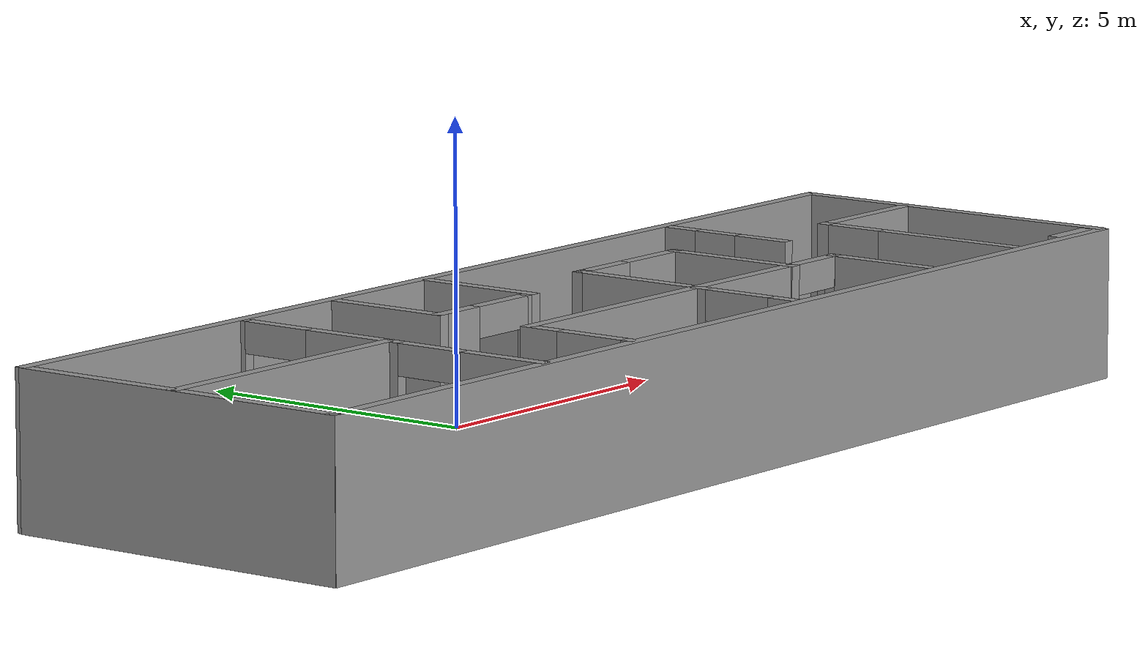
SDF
<?xml version='1.0'?>
<sdf version='1.4'>
  <model name='House 5'>
    <link name='Stairs_0'>
      <visual name='Stairs_0_Visual_0'>
        <pose>9.10391 -2.35747 0.083333 0 -0 0</pose>
        <geometry>
          <box>
            <size>1 0.233333 0.166667</size>
          </box>
        </geometry>
        <material>
          <script>
            <uri>file://media/materials/scripts/gazebo.material</uri>
            <name>Gazebo/Grey</name>
          </script>
        </material>
      </visual>
      <collision name='Stairs_0_Collision_0'>
        <geometry>
          <box>
            <size>1 0.233333 0.166667</size>
          </box>
        </geometry>
        <pose>9.10391 -2.35747 0.083333 0 -0 0</pose>
      </collision>
      <visual name='Stairs_0_Visual_1'>
        <pose>9.10391 -2.5908 0.25 0 -0 0</pose>
        <geometry>
          <box>
            <size>1 0.233335 0.166668</size>
          </box>
        </geometry>
        <material>
          <script>
            <uri>file://media/materials/scripts/gazebo.material</uri>
            <name>Gazebo/Grey</name>
          </script>
        </material>
      </visual>
      <collision name='Stairs_0_Collision_1'>
        <geometry>
          <box>
            <size>1 0.233335 0.166668</size>
          </box>
        </geometry>
        <pose>9.10391 -2.5908 0.25 0 -0 0</pose>
      </collision>
      <visual name='Stairs_0_Visual_2'>
        <pose>9.10391 -2.82414 0.416667 0 -0 0</pose>
        <geometry>
          <box>
            <size>1 0.233335 0.166668</size>
          </box>
        </geometry>
        <material>
          <script>
            <uri>file://media/materials/scripts/gazebo.material</uri>
            <name>Gazebo/Grey</name>
          </script>
        </material>
      </visual>
      <collision name='Stairs_0_Collision_2'>
        <geometry>
          <box>
            <size>1 0.233335 0.166668</size>
          </box>
        </geometry>
        <pose>9.10391 -2.82414 0.416667 0 -0 0</pose>
      </collision>
      <visual name='Stairs_0_Visual_3'>
        <pose>9.10391 -3.05747 0.583333 0 -0 0</pose>
        <geometry>
          <box>
            <size>1 0.233335 0.166668</size>
          </box>
        </geometry>
        <material>
          <script>
            <uri>file://media/materials/scripts/gazebo.material</uri>
            <name>Gazebo/Grey</name>
          </script>
        </material>
      </visual>
      <collision name='Stairs_0_Collision_3'>
        <geometry>
          <box>
            <size>1 0.233335 0.166668</size>
          </box>
        </geometry>
        <pose>9.10391 -3.05747 0.583333 0 -0 0</pose>
      </collision>
      <visual name='Stairs_0_Visual_4'>
        <pose>9.10391 -3.2908 0.75 0 -0 0</pose>
        <geometry>
          <box>
            <size>1 0.233335 0.166668</size>
          </box>
        </geometry>
        <material>
          <script>
            <uri>file://media/materials/scripts/gazebo.material</uri>
            <name>Gazebo/Grey</name>
          </script>
        </material>
      </visual>
      <collision name='Stairs_0_Collision_4'>
        <geometry>
          <box>
            <size>1 0.233335 0.166668</size>
          </box>
        </geometry>
        <pose>9.10391 -3.2908 0.75 0 -0 0</pose>
      </collision>
      <visual name='Stairs_0_Visual_5'>
        <pose>9.10391 -3.52414 0.916667 0 -0 0</pose>
        <geometry>
          <box>
            <size>1 0.233335 0.166668</size>
          </box>
        </geometry>
        <material>
          <script>
            <uri>file://media/materials/scripts/gazebo.material</uri>
            <name>Gazebo/Grey</name>
          </script>
        </material>
      </visual>
      <collision name='Stairs_0_Collision_5'>
        <geometry>
          <box>
            <size>1 0.233335 0.166668</size>
          </box>
        </geometry>
        <pose>9.10391 -3.52414 0.916667 0 -0 0</pose>
      </collision>
      <visual name='Stairs_0_Visual_6'>
        <pose>9.10391 -3.75747 1.08333 0 -0 0</pose>
        <geometry>
          <box>
            <size>1 0.233335 0.166668</size>
          </box>
        </geometry>
        <material>
          <script>
            <uri>file://media/materials/scripts/gazebo.material</uri>
            <name>Gazebo/Grey</name>
          </script>
        </material>
      </visual>
      <collision name='Stairs_0_Collision_6'>
        <geometry>
          <box>
            <size>1 0.233335 0.166668</size>
          </box>
        </geometry>
        <pose>9.10391 -3.75747 1.08333 0 -0 0</pose>
      </collision>
      <visual name='Stairs_0_Visual_7'>
        <pose>9.10391 -3.9908 1.25 0 -0 0</pose>
        <geometry>
          <box>
            <size>1 0.233335 0.166668</size>
          </box>
        </geometry>
        <material>
          <script>
            <uri>file://media/materials/scripts/gazebo.material</uri>
            <name>Gazebo/Grey</name>
          </script>
        </material>
      </visual>
      <collision name='Stairs_0_Collision_7'>
        <geometry>
          <box>
            <size>1 0.233335 0.166668</size>
          </box>
        </geometry>
        <pose>9.10391 -3.9908 1.25 0 -0 0</pose>
      </collision>
      <visual name='Stairs_0_Visual_8'>
        <pose>9.10391 -4.22414 1.41667 0 -0 0</pose>
        <geometry>
          <box>
            <size>1 0.233335 0.166668</size>
          </box>
        </geometry>
        <material>
          <script>
            <uri>file://media/materials/scripts/gazebo.material</uri>
            <name>Gazebo/Grey</name>
          </script>
        </material>
      </visual>
      <collision name='Stairs_0_Collision_8'>
        <geometry>
          <box>
            <size>1 0.233335 0.166668</size>
          </box>
        </geometry>
        <pose>9.10391 -4.22414 1.41667 0 -0 0</pose>
      </collision>
      <visual name='Stairs_0_Visual_9'>
        <pose>9.10391 -4.45747 1.58333 0 -0 0</pose>
        <geometry>
          <box>
            <size>1 0.233335 0.166668</size>
          </box>
        </geometry>
        <material>
          <script>
            <uri>file://media/materials/scripts/gazebo.material</uri>
            <name>Gazebo/Grey</name>
          </script>
        </material>
      </visual>
      <collision name='Stairs_0_Collision_9'>
        <geometry>
          <box>
            <size>1 0.233335 0.166668</size>
          </box>
        </geometry>
        <pose>9.10391 -4.45747 1.58333 0 -0 0</pose>
      </collision>
      <visual name='Stairs_0_Visual_10'>
        <pose>9.10391 -4.6908 1.75 0 -0 0</pose>
        <geometry>
          <box>
            <size>1 0.233335 0.166668</size>
          </box>
        </geometry>
        <material>
          <script>
            <uri>file://media/materials/scripts/gazebo.material</uri>
            <name>Gazebo/Grey</name>
          </script>
        </material>
      </visual>
      <collision name='Stairs_0_Collision_10'>
        <geometry>
          <box>
            <size>1 0.233335 0.166668</size>
          </box>
        </geometry>
        <pose>9.10391 -4.6908 1.75 0 -0 0</pose>
      </collision>
      <visual name='Stairs_0_Visual_11'>
        <pose>9.10391 -4.92414 1.91667 0 -0 0</pose>
        <geometry>
          <box>
            <size>1 0.233335 0.166668</size>
          </box>
        </geometry>
        <material>
          <script>
            <uri>file://media/materials/scripts/gazebo.material</uri>
            <name>Gazebo/Grey</name>
          </script>
        </material>
      </visual>
      <collision name='Stairs_0_Collision_11'>
        <geometry>
          <box>
            <size>1 0.233335 0.166668</size>
          </box>
        </geometry>
        <pose>9.10391 -4.92414 1.91667 0 -0 0</pose>
      </collision>
      <visual name='Stairs_0_Visual_12'>
        <pose>9.10391 -5.15747 2.08333 0 -0 0</pose>
        <geometry>
          <box>
            <size>1 0.233335 0.166668</size>
          </box>
        </geometry>
        <material>
          <script>
            <uri>file://media/materials/scripts/gazebo.material</uri>
            <name>Gazebo/Grey</name>
          </script>
        </material>
      </visual>
      <collision name='Stairs_0_Collision_12'>
        <geometry>
          <box>
            <size>1 0.233335 0.166668</size>
          </box>
        </geometry>
        <pose>9.10391 -5.15747 2.08333 0 -0 0</pose>
      </collision>
      <visual name='Stairs_0_Visual_13'>
        <pose>9.10391 -5.3908 2.25 0 -0 0</pose>
        <geometry>
          <box>
            <size>1 0.233335 0.166668</size>
          </box>
        </geometry>
        <material>
          <script>
            <uri>file://media/materials/scripts/gazebo.material</uri>
            <name>Gazebo/Grey</name>
          </script>
        </material>
      </visual>
      <collision name='Stairs_0_Collision_13'>
        <geometry>
          <box>
            <size>1 0.233335 0.166668</size>
          </box>
        </geometry>
        <pose>9.10391 -5.3908 2.25 0 -0 0</pose>
      </collision>
      <visual name='Stairs_0_Visual_14'>
        <pose>9.10391 -5.62413 2.41667 0 -0 0</pose>
        <geometry>
          <box>
            <size>1 0.233335 0.166668</size>
          </box>
        </geometry>
        <material>
          <script>
            <uri>file://media/materials/scripts/gazebo.material</uri>
            <name>Gazebo/Grey</name>
          </script>
        </material>
      </visual>
      <collision name='Stairs_0_Collision_14'>
        <geometry>
          <box>
            <size>1 0.233335 0.166668</size>
          </box>
        </geometry>
        <pose>9.10391 -5.62413 2.41667 0 -0 0</pose>
      </collision>
    </link>
    <link name='Wall_11'>
      <collision name='Wall_11_Collision'>
        <geometry>
          <box>
            <size>20 0.2 2.5</size>
          </box>
        </geometry>
        <pose>0 0 1.25 0 -0 0</pose>
      </collision>
      <visual name='Wall_11_Visual'>
        <pose>0 0 1.25 0 -0 0</pose>
        <geometry>
          <box>
            <size>20 0.2 2.5</size>
          </box>
        </geometry>
        <material>
          <script>
            <uri>file://media/materials/scripts/gazebo.material</uri>
            <name>Gazebo/Grey</name>
          </script>
        </material>
      </visual>
      <velocity_decay>
        <linear>0</linear>
        <angular>0</angular>
      </velocity_decay>
      <pose>-0.194494 -5.81812 0 0 -0 0</pose>
    </link>
    <link name='Wall_13'>
      <collision name='Wall_13_Collision'>
        <geometry>
          <box>
            <size>5 0.2 2.5</size>
          </box>
        </geometry>
        <pose>0 0 1.25 0 -0 0</pose>
      </collision>
      <visual name='Wall_13_Visual'>
        <pose>0 0 1.25 0 -0 0</pose>
        <geometry>
          <box>
            <size>5 0.2 2.5</size>
          </box>
        </geometry>
        <material>
          <script>
            <uri>file://media/materials/scripts/gazebo.material</uri>
            <name>Gazebo/Grey</name>
          </script>
        </material>
      </visual>
      <velocity_decay>
        <linear>0</linear>
        <angular>0</angular>
      </velocity_decay>
      <pose>-7.64823 -2.83427 0 0 -0 0</pose>
    </link>
    <link name='Wall_15'>
      <pose>-5.1908 -2.83427 0 0 0 -1.5708</pose>
      <visual name='Wall_15_Visual_0'>
        <pose>-2.87124 0 1.25 0 -0 0</pose>
        <geometry>
          <box>
            <size>0.286441 0.2 2.5</size>
          </box>
        </geometry>
        <material>
          <script>
            <uri>file://media/materials/scripts/gazebo.material</uri>
            <name>Gazebo/Grey</name>
          </script>
        </material>
      </visual>
      <collision name='Wall_15_Collision_0'>
        <geometry>
          <box>
            <size>0.286441 0.2 2.5</size>
          </box>
        </geometry>
        <pose>-2.87124 0 1.25 0 -0 0</pose>
      </collision>
      <visual name='Wall_15_Visual_1'>
        <pose>-0.636092 0 1.25 0 -0 0</pose>
        <geometry>
          <box>
            <size>1.78385 0.2 2.5</size>
          </box>
        </geometry>
        <material>
          <script>
            <uri>file://media/materials/scripts/gazebo.material</uri>
            <name>Gazebo/Grey</name>
          </script>
        </material>
      </visual>
      <collision name='Wall_15_Collision_1'>
        <geometry>
          <box>
            <size>1.78385 0.2 2.5</size>
          </box>
        </geometry>
        <pose>-0.636092 0 1.25 0 -0 0</pose>
      </collision>
      <visual name='Wall_15_Visual_2'>
        <pose>2.23515 0 1.25 0 -0 0</pose>
        <geometry>
          <box>
            <size>1.55862 0.2 2.5</size>
          </box>
        </geometry>
        <material>
          <script>
            <uri>file://media/materials/scripts/gazebo.material</uri>
            <name>Gazebo/Grey</name>
          </script>
        </material>
      </visual>
      <collision name='Wall_15_Collision_2'>
        <geometry>
          <box>
            <size>1.55862 0.2 2.5</size>
          </box>
        </geometry>
        <pose>2.23515 0 1.25 0 -0 0</pose>
      </collision>
      <visual name='Wall_15_Visual_3'>
        <pose>-2.12802 0 2.25 0 -0 0</pose>
        <geometry>
          <box>
            <size>1.2 0.2 0.5</size>
          </box>
        </geometry>
        <material>
          <script>
            <uri>file://media/materials/scripts/gazebo.material</uri>
            <name>Gazebo/Grey</name>
          </script>
        </material>
      </visual>
      <collision name='Wall_15_Collision_3'>
        <geometry>
          <box>
            <size>1.2 0.2 0.5</size>
          </box>
        </geometry>
        <pose>-2.12802 0 2.25 0 -0 0</pose>
      </collision>
      <visual name='Wall_15_Visual_4'>
        <pose>0.855833 0 2.25 0 -0 0</pose>
        <geometry>
          <box>
            <size>1.2 0.2 0.5</size>
          </box>
        </geometry>
        <material>
          <script>
            <uri>file://media/materials/scripts/gazebo.material</uri>
            <name>Gazebo/Grey</name>
          </script>
        </material>
      </visual>
      <collision name='Wall_15_Collision_4'>
        <geometry>
          <box>
            <size>1.2 0.2 0.5</size>
          </box>
        </geometry>
        <pose>0.855833 0 2.25 0 -0 0</pose>
      </collision>
    </link>
    <link name='Wall_16'>
      <collision name='Wall_16_Collision'>
        <geometry>
          <box>
            <size>0.21 0.2 2.5</size>
          </box>
        </geometry>
        <pose>0 0 1.25 0 -0 0</pose>
      </collision>
      <visual name='Wall_16_Visual'>
        <pose>0 0 1.25 0 -0 0</pose>
        <geometry>
          <box>
            <size>0.21 0.2 2.5</size>
          </box>
        </geometry>
        <material>
          <script>
            <uri>file://media/materials/scripts/gazebo.material</uri>
            <name>Gazebo/Grey</name>
          </script>
        </material>
      </visual>
      <velocity_decay>
        <linear>0</linear>
        <angular>0</angular>
      </velocity_decay>
      <pose>-5.1858 -5.74873 0 0 -0 0</pose>
    </link>
    <link name='Wall_18'>
      <collision name='Wall_18_Collision'>
        <geometry>
          <box>
            <size>2.23549 0.2 2.5</size>
          </box>
        </geometry>
        <pose>0 0 1.25 0 -0 0</pose>
      </collision>
      <visual name='Wall_18_Visual'>
        <pose>0 0 1.25 0 -0 0</pose>
        <geometry>
          <box>
            <size>2.23549 0.2 2.5</size>
          </box>
        </geometry>
        <material>
          <script>
            <uri>file://media/materials/scripts/gazebo.material</uri>
            <name>Gazebo/Grey</name>
          </script>
        </material>
      </visual>
      <velocity_decay>
        <linear>0</linear>
        <angular>0</angular>
      </velocity_decay>
      <pose>-3.01653 -1.05322 0 0 0 -1.5708</pose>
    </link>
    <link name='Wall_19'>
      <pose>-1.87156 -2.07096 0 0 -0 0</pose>
      <visual name='Wall_19_Visual_0'>
        <pose>-0.754786 0 1.25 0 -0 0</pose>
        <geometry>
          <box>
            <size>0.980359 0.2 2.5</size>
          </box>
        </geometry>
        <material>
          <script>
            <uri>file://media/materials/scripts/gazebo.material</uri>
            <name>Gazebo/Grey</name>
          </script>
        </material>
      </visual>
      <collision name='Wall_19_Collision_0'>
        <geometry>
          <box>
            <size>0.980359 0.2 2.5</size>
          </box>
        </geometry>
        <pose>-0.754786 0 1.25 0 -0 0</pose>
      </collision>
      <visual name='Wall_19_Visual_1'>
        <pose>1.09018 0 1.25 0 -0 0</pose>
        <geometry>
          <box>
            <size>0.309571 0.2 2.5</size>
          </box>
        </geometry>
        <material>
          <script>
            <uri>file://media/materials/scripts/gazebo.material</uri>
            <name>Gazebo/Grey</name>
          </script>
        </material>
      </visual>
      <collision name='Wall_19_Collision_1'>
        <geometry>
          <box>
            <size>0.309571 0.2 2.5</size>
          </box>
        </geometry>
        <pose>1.09018 0 1.25 0 -0 0</pose>
      </collision>
      <visual name='Wall_19_Visual_2'>
        <pose>0.335394 0 2.25 0 -0 0</pose>
        <geometry>
          <box>
            <size>1.2 0.2 0.5</size>
          </box>
        </geometry>
        <material>
          <script>
            <uri>file://media/materials/scripts/gazebo.material</uri>
            <name>Gazebo/Grey</name>
          </script>
        </material>
      </visual>
      <collision name='Wall_19_Collision_2'>
        <geometry>
          <box>
            <size>1.2 0.2 0.5</size>
          </box>
        </geometry>
        <pose>0.335394 0 2.25 0 -0 0</pose>
      </collision>
    </link>
    <link name='Wall_20'>
      <collision name='Wall_20_Collision'>
        <geometry>
          <box>
            <size>2.21236 0.2 2.5</size>
          </box>
        </geometry>
        <pose>0 0 1.25 0 -0 0</pose>
      </collision>
      <visual name='Wall_20_Visual'>
        <pose>0 0 1.25 0 -0 0</pose>
        <geometry>
          <box>
            <size>2.21236 0.2 2.5</size>
          </box>
        </geometry>
        <material>
          <script>
            <uri>file://media/materials/scripts/gazebo.material</uri>
            <name>Gazebo/Grey</name>
          </script>
        </material>
      </visual>
      <velocity_decay>
        <linear>0</linear>
        <angular>0</angular>
      </velocity_decay>
      <pose>-0.726597 -1.06478 0 0 -0 1.5708</pose>
    </link>
    <link name='Wall_22'>
      <pose>-2.97027 -4.78881 0 0 -0 1.5708</pose>
      <visual name='Wall_22_Visual_0'>
        <pose>-0.951396 0 1.25 0 -0 0</pose>
        <geometry>
          <box>
            <size>0.309571 0.2 2.5</size>
          </box>
        </geometry>
        <material>
          <script>
            <uri>file://media/materials/scripts/gazebo.material</uri>
            <name>Gazebo/Grey</name>
          </script>
        </material>
      </visual>
      <collision name='Wall_22_Collision_0'>
        <geometry>
          <box>
            <size>0.309571 0.2 2.5</size>
          </box>
        </geometry>
        <pose>-0.951396 0 1.25 0 -0 0</pose>
      </collision>
      <visual name='Wall_22_Visual_1'>
        <pose>0.754786 0 1.25 0 -0 0</pose>
        <geometry>
          <box>
            <size>0.702791 0.2 2.5</size>
          </box>
        </geometry>
        <material>
          <script>
            <uri>file://media/materials/scripts/gazebo.material</uri>
            <name>Gazebo/Grey</name>
          </script>
        </material>
      </visual>
      <collision name='Wall_22_Collision_1'>
        <geometry>
          <box>
            <size>0.702791 0.2 2.5</size>
          </box>
        </geometry>
        <pose>0.754786 0 1.25 0 -0 0</pose>
      </collision>
      <visual name='Wall_22_Visual_2'>
        <pose>-0.19661 0 2.25 0 -0 0</pose>
        <geometry>
          <box>
            <size>1.2 0.2 0.5</size>
          </box>
        </geometry>
        <material>
          <script>
            <uri>file://media/materials/scripts/gazebo.material</uri>
            <name>Gazebo/Grey</name>
          </script>
        </material>
      </visual>
      <collision name='Wall_22_Collision_2'>
        <geometry>
          <box>
            <size>1.2 0.2 0.5</size>
          </box>
        </geometry>
        <pose>-0.19661 0 2.25 0 -0 0</pose>
      </collision>
    </link>
    <link name='Wall_23'>
      <pose>1.0082 -3.78263 0 0 -0 0</pose>
      <visual name='Wall_23_Visual_0'>
        <pose>-0.600698 0 1.25 0 -0 0</pose>
        <geometry>
          <box>
            <size>6.95553 0.2 2.5</size>
          </box>
        </geometry>
        <material>
          <script>
            <uri>file://media/materials/scripts/gazebo.material</uri>
            <name>Gazebo/Grey</name>
          </script>
        </material>
      </visual>
      <collision name='Wall_23_Collision_0'>
        <geometry>
          <box>
            <size>6.95553 0.2 2.5</size>
          </box>
        </geometry>
        <pose>-0.600698 0 1.25 0 -0 0</pose>
      </collision>
      <visual name='Wall_23_Visual_1'>
        <pose>3.97777 0 1.25 0 -0 0</pose>
        <geometry>
          <box>
            <size>0.201396 0.2 2.5</size>
          </box>
        </geometry>
        <material>
          <script>
            <uri>file://media/materials/scripts/gazebo.material</uri>
            <name>Gazebo/Grey</name>
          </script>
        </material>
      </visual>
      <collision name='Wall_23_Collision_1'>
        <geometry>
          <box>
            <size>0.201396 0.2 2.5</size>
          </box>
        </geometry>
        <pose>3.97777 0 1.25 0 -0 0</pose>
      </collision>
      <visual name='Wall_23_Visual_2'>
        <pose>3.37707 0 2.25 0 -0 0</pose>
        <geometry>
          <box>
            <size>1 0.2 0.5</size>
          </box>
        </geometry>
        <material>
          <script>
            <uri>file://media/materials/scripts/gazebo.material</uri>
            <name>Gazebo/Grey</name>
          </script>
        </material>
      </visual>
      <collision name='Wall_23_Collision_2'>
        <geometry>
          <box>
            <size>1 0.2 0.5</size>
          </box>
        </geometry>
        <pose>3.37707 0 2.25 0 -0 0</pose>
      </collision>
    </link>
    <link name='Wall_24'>
      <collision name='Wall_24_Collision'>
        <geometry>
          <box>
            <size>2.18923 0.2 2.5</size>
          </box>
        </geometry>
        <pose>0 0 1.25 0 -0 0</pose>
      </collision>
      <visual name='Wall_24_Visual'>
        <pose>0 0 1.25 0 -0 0</pose>
        <geometry>
          <box>
            <size>2.18923 0.2 2.5</size>
          </box>
        </geometry>
        <material>
          <script>
            <uri>file://media/materials/scripts/gazebo.material</uri>
            <name>Gazebo/Grey</name>
          </script>
        </material>
      </visual>
      <velocity_decay>
        <linear>0</linear>
        <angular>0</angular>
      </velocity_decay>
      <pose>4.98666 -4.77724 0 0 0 -1.5708</pose>
    </link>
    <link name='Wall_26'>
      <pose>1.28577 -4.81024 0 0 0 -1.5708</pose>
      <visual name='Wall_26_Visual_0'>
        <pose>-0.928265 0 1.25 0 -0 0</pose>
        <geometry>
          <box>
            <size>0.31297 0.2 2.5</size>
          </box>
        </geometry>
        <material>
          <script>
            <uri>file://media/materials/scripts/gazebo.material</uri>
            <name>Gazebo/Grey</name>
          </script>
        </material>
      </visual>
      <collision name='Wall_26_Collision_0'>
        <geometry>
          <box>
            <size>0.31297 0.2 2.5</size>
          </box>
        </geometry>
        <pose>-0.928265 0 1.25 0 -0 0</pose>
      </collision>
      <visual name='Wall_26_Visual_1'>
        <pose>0.756485 0 1.25 0 -0 0</pose>
        <geometry>
          <box>
            <size>0.65653 0.2 2.5</size>
          </box>
        </geometry>
        <material>
          <script>
            <uri>file://media/materials/scripts/gazebo.material</uri>
            <name>Gazebo/Grey</name>
          </script>
        </material>
      </visual>
      <collision name='Wall_26_Collision_1'>
        <geometry>
          <box>
            <size>0.65653 0.2 2.5</size>
          </box>
        </geometry>
        <pose>0.756485 0 1.25 0 -0 0</pose>
      </collision>
      <visual name='Wall_26_Visual_2'>
        <pose>-0.17178 0 2.25 0 -0 0</pose>
        <geometry>
          <box>
            <size>1.2 0.2 0.5</size>
          </box>
        </geometry>
        <material>
          <script>
            <uri>file://media/materials/scripts/gazebo.material</uri>
            <name>Gazebo/Grey</name>
          </script>
        </material>
      </visual>
      <collision name='Wall_26_Collision_2'>
        <geometry>
          <box>
            <size>1.2 0.2 0.5</size>
          </box>
        </geometry>
        <pose>-0.17178 0 2.25 0 -0 0</pose>
      </collision>
    </link>
    <link name='Wall_29'>
      <pose>7.41538 -3.81732 0 0 -0 1.5708</pose>
      <visual name='Wall_29_Visual_0'>
        <pose>-0.612263 0 1.25 0 -0 0</pose>
        <geometry>
          <box>
            <size>2.79202 0.2 2.5</size>
          </box>
        </geometry>
        <material>
          <script>
            <uri>file://media/materials/scripts/gazebo.material</uri>
            <name>Gazebo/Grey</name>
          </script>
        </material>
      </visual>
      <collision name='Wall_29_Collision_0'>
        <geometry>
          <box>
            <size>2.79202 0.2 2.5</size>
          </box>
        </geometry>
        <pose>-0.612263 0 1.25 0 -0 0</pose>
      </collision>
      <visual name='Wall_29_Visual_1'>
        <pose>1.89601 0 1.25 0 -0 0</pose>
        <geometry>
          <box>
            <size>0.224527 0.2 2.5</size>
          </box>
        </geometry>
        <material>
          <script>
            <uri>file://media/materials/scripts/gazebo.material</uri>
            <name>Gazebo/Grey</name>
          </script>
        </material>
      </visual>
      <collision name='Wall_29_Collision_1'>
        <geometry>
          <box>
            <size>0.224527 0.2 2.5</size>
          </box>
        </geometry>
        <pose>1.89601 0 1.25 0 -0 0</pose>
      </collision>
      <visual name='Wall_29_Visual_2'>
        <pose>1.28375 0 2.25 0 -0 0</pose>
        <geometry>
          <box>
            <size>1 0.2 0.5</size>
          </box>
        </geometry>
        <material>
          <script>
            <uri>file://media/materials/scripts/gazebo.material</uri>
            <name>Gazebo/Grey</name>
          </script>
        </material>
      </visual>
      <collision name='Wall_29_Collision_2'>
        <geometry>
          <box>
            <size>1 0.2 0.5</size>
          </box>
        </geometry>
        <pose>1.28375 0 2.25 0 -0 0</pose>
      </collision>
    </link>
    <link name='Wall_30'>
      <collision name='Wall_30_Collision'>
        <geometry>
          <box>
            <size>2.39741 0.2 2.5</size>
          </box>
        </geometry>
        <pose>0 0 1.25 0 -0 0</pose>
      </collision>
      <visual name='Wall_30_Visual'>
        <pose>0 0 1.25 0 -0 0</pose>
        <geometry>
          <box>
            <size>2.39741 0.2 2.5</size>
          </box>
        </geometry>
        <material>
          <script>
            <uri>file://media/materials/scripts/gazebo.material</uri>
            <name>Gazebo/Grey</name>
          </script>
        </material>
      </visual>
      <velocity_decay>
        <linear>0</linear>
        <angular>0</angular>
      </velocity_decay>
      <pose>8.51408 -1.90905 0 0 -0 0</pose>
    </link>
    <link name='Wall_33'>
      <collision name='Wall_33_Collision'>
        <geometry>
          <box>
            <size>2.48993 0.2 2.5</size>
          </box>
        </geometry>
        <pose>0 0 1.25 0 -0 0</pose>
      </collision>
      <visual name='Wall_33_Visual'>
        <pose>0 0 1.25 0 -0 0</pose>
        <geometry>
          <box>
            <size>2.48993 0.2 2.5</size>
          </box>
        </geometry>
        <material>
          <script>
            <uri>file://media/materials/scripts/gazebo.material</uri>
            <name>Gazebo/Grey</name>
          </script>
        </material>
      </visual>
      <velocity_decay>
        <linear>0</linear>
        <angular>0</angular>
      </velocity_decay>
      <pose>1.3089 -2.63766 0 0 -0 1.5708</pose>
    </link>
    <link name='Wall_34'>
      <pose>2.54638 -1.4927 0 0 -0 0</pose>
      <visual name='Wall_34_Visual_0'>
        <pose>-1.21366 0 1.25 0 -0 0</pose>
        <geometry>
          <box>
            <size>0.247657 0.2 2.5</size>
          </box>
        </geometry>
        <material>
          <script>
            <uri>file://media/materials/scripts/gazebo.material</uri>
            <name>Gazebo/Grey</name>
          </script>
        </material>
      </visual>
      <collision name='Wall_34_Collision_0'>
        <geometry>
          <box>
            <size>0.247657 0.2 2.5</size>
          </box>
        </geometry>
        <pose>-1.21366 0 1.25 0 -0 0</pose>
      </collision>
      <visual name='Wall_34_Visual_1'>
        <pose>0.623828 0 1.25 0 -0 0</pose>
        <geometry>
          <box>
            <size>1.42732 0.2 2.5</size>
          </box>
        </geometry>
        <material>
          <script>
            <uri>file://media/materials/scripts/gazebo.material</uri>
            <name>Gazebo/Grey</name>
          </script>
        </material>
      </visual>
      <collision name='Wall_34_Collision_1'>
        <geometry>
          <box>
            <size>1.42732 0.2 2.5</size>
          </box>
        </geometry>
        <pose>0.623828 0 1.25 0 -0 0</pose>
      </collision>
      <visual name='Wall_34_Visual_2'>
        <pose>-0.589831 0 2.25 0 -0 0</pose>
        <geometry>
          <box>
            <size>1 0.2 0.5</size>
          </box>
        </geometry>
        <material>
          <script>
            <uri>file://media/materials/scripts/gazebo.material</uri>
            <name>Gazebo/Grey</name>
          </script>
        </material>
      </visual>
      <collision name='Wall_34_Collision_2'>
        <geometry>
          <box>
            <size>1 0.2 0.5</size>
          </box>
        </geometry>
        <pose>-0.589831 0 2.25 0 -0 0</pose>
      </collision>
    </link>
    <link name='Wall_35'>
      <collision name='Wall_35_Collision'>
        <geometry>
          <box>
            <size>2.51306 0.2 2.5</size>
          </box>
        </geometry>
        <pose>0 0 1.25 0 -0 0</pose>
      </collision>
      <visual name='Wall_35_Visual'>
        <pose>0 0 1.25 0 -0 0</pose>
        <geometry>
          <box>
            <size>2.51306 0.2 2.5</size>
          </box>
        </geometry>
        <material>
          <script>
            <uri>file://media/materials/scripts/gazebo.material</uri>
            <name>Gazebo/Grey</name>
          </script>
        </material>
      </visual>
      <velocity_decay>
        <linear>0</linear>
        <angular>0</angular>
      </velocity_decay>
      <pose>3.78387 -2.64923 0 0 0 -1.5708</pose>
    </link>
    <link name='Wall_37'>
      <pose>5.61119 -1.16887 0 0 0 -1.5708</pose>
      <visual name='Wall_37_Visual_0'>
        <pose>-0.909222 0 1.25 0 -0 0</pose>
        <geometry>
          <box>
            <size>0.740877 0.2 2.5</size>
          </box>
        </geometry>
        <material>
          <script>
            <uri>file://media/materials/scripts/gazebo.material</uri>
            <name>Gazebo/Grey</name>
          </script>
        </material>
      </visual>
      <collision name='Wall_37_Collision_0'>
        <geometry>
          <box>
            <size>0.740877 0.2 2.5</size>
          </box>
        </geometry>
        <pose>-0.909222 0 1.25 0 -0 0</pose>
      </collision>
      <visual name='Wall_37_Visual_1'>
        <pose>0.370439 0 0.25 0 -0 0</pose>
        <geometry>
          <box>
            <size>1.81845 0.2 0.5</size>
          </box>
        </geometry>
        <material>
          <script>
            <uri>file://media/materials/scripts/gazebo.material</uri>
            <name>Gazebo/Grey</name>
          </script>
        </material>
      </visual>
      <collision name='Wall_37_Collision_1'>
        <geometry>
          <box>
            <size>1.81845 0.2 0.5</size>
          </box>
        </geometry>
        <pose>0.370439 0 0.25 0 -0 0</pose>
      </collision>
      <visual name='Wall_37_Visual_2'>
        <pose>0.770439 0 1.5 0 -0 0</pose>
        <geometry>
          <box>
            <size>1.01845 0.2 2</size>
          </box>
        </geometry>
        <material>
          <script>
            <uri>file://media/materials/scripts/gazebo.material</uri>
            <name>Gazebo/Grey</name>
          </script>
        </material>
      </visual>
      <collision name='Wall_37_Collision_2'>
        <geometry>
          <box>
            <size>1.01845 0.2 2</size>
          </box>
        </geometry>
        <pose>0.770439 0 1.5 0 -0 0</pose>
      </collision>
      <visual name='Wall_37_Visual_3'>
        <pose>-0.138784 0 1.9 0 -0 0</pose>
        <geometry>
          <box>
            <size>0.8 0.2 1.2</size>
          </box>
        </geometry>
        <material>
          <script>
            <uri>file://media/materials/scripts/gazebo.material</uri>
            <name>Gazebo/Grey</name>
          </script>
        </material>
      </visual>
      <collision name='Wall_37_Collision_3'>
        <geometry>
          <box>
            <size>0.8 0.2 1.2</size>
          </box>
        </geometry>
        <pose>-0.138784 0 1.9 0 -0 0</pose>
      </collision>
    </link>
    <link name='Wall_5'>
      <collision name='Wall_5_Collision'>
        <geometry>
          <box>
            <size>6 0.2 2.5</size>
          </box>
        </geometry>
        <pose>0 0 1.25 0 -0 0</pose>
      </collision>
      <visual name='Wall_5_Visual'>
        <pose>0 0 1.25 0 -0 0</pose>
        <geometry>
          <box>
            <size>6 0.2 2.5</size>
          </box>
        </geometry>
        <material>
          <script>
            <uri>file://media/materials/scripts/gazebo.material</uri>
            <name>Gazebo/Grey</name>
          </script>
        </material>
      </visual>
      <velocity_decay>
        <linear>0</linear>
        <angular>0</angular>
      </velocity_decay>
      <pose>-10.0945 -2.91234 0 0 0 -1.5708</pose>
    </link>
    <link name='Wall_7'>
      <collision name='Wall_7_Collision'>
        <geometry>
          <box>
            <size>20 0.2 2.5</size>
          </box>
        </geometry>
        <pose>0 0 1.25 0 -0 0</pose>
      </collision>
      <visual name='Wall_7_Visual'>
        <pose>0 0 1.25 0 -0 0</pose>
        <geometry>
          <box>
            <size>20 0.2 2.5</size>
          </box>
        </geometry>
        <material>
          <script>
            <uri>file://media/materials/scripts/gazebo.material</uri>
            <name>Gazebo/Grey</name>
          </script>
        </material>
      </visual>
      <velocity_decay>
        <linear>0</linear>
        <angular>0</angular>
      </velocity_decay>
      <pose>-0.171363 0.080185 0 0 -0 0</pose>
    </link>
    <link name='Wall_9'>
      <collision name='Wall_9_Collision'>
        <geometry>
          <box>
            <size>6 0.2 2.5</size>
          </box>
        </geometry>
        <pose>0 0 1.25 0 -0 0</pose>
      </collision>
      <visual name='Wall_9_Visual'>
        <pose>0 0 1.25 0 -0 0</pose>
        <geometry>
          <box>
            <size>6 0.2 2.5</size>
          </box>
        </geometry>
        <material>
          <script>
            <uri>file://media/materials/scripts/gazebo.material</uri>
            <name>Gazebo/Grey</name>
          </script>
        </material>
      </visual>
      <velocity_decay>
        <linear>0</linear>
        <angular>0</angular>
      </velocity_decay>
      <pose>9.75157 -2.81982 0 0 0 -1.5708</pose>
    </link>
    <static>1</static>
  </model>
</sdf>
